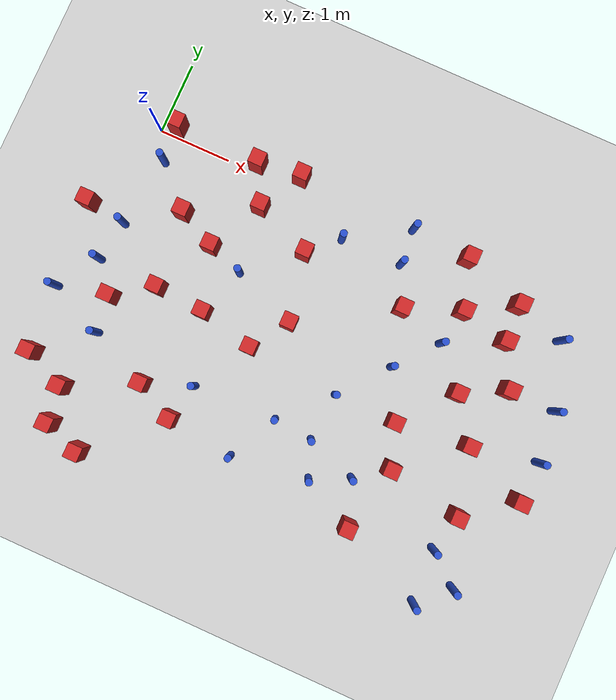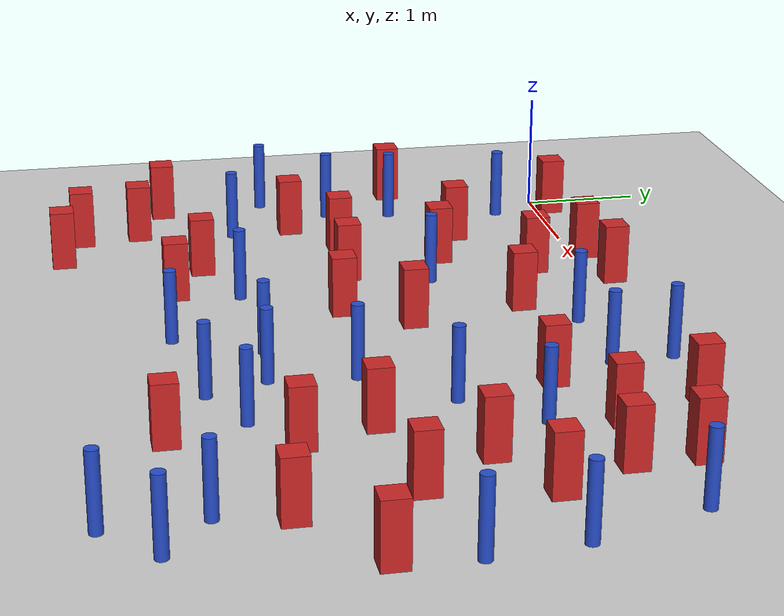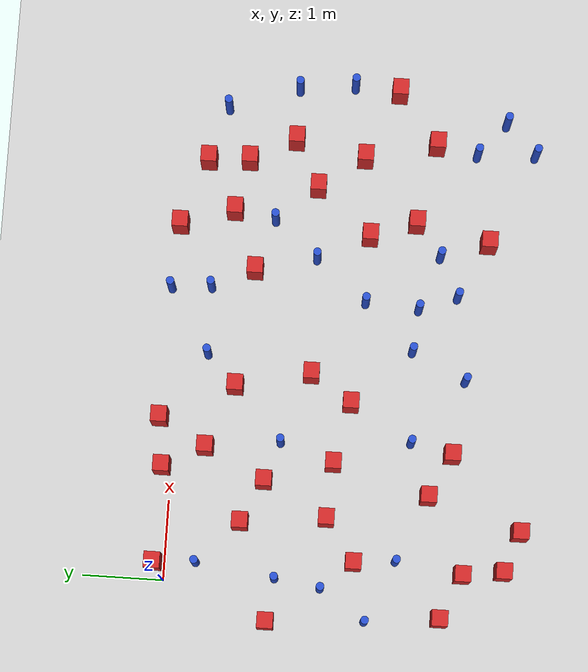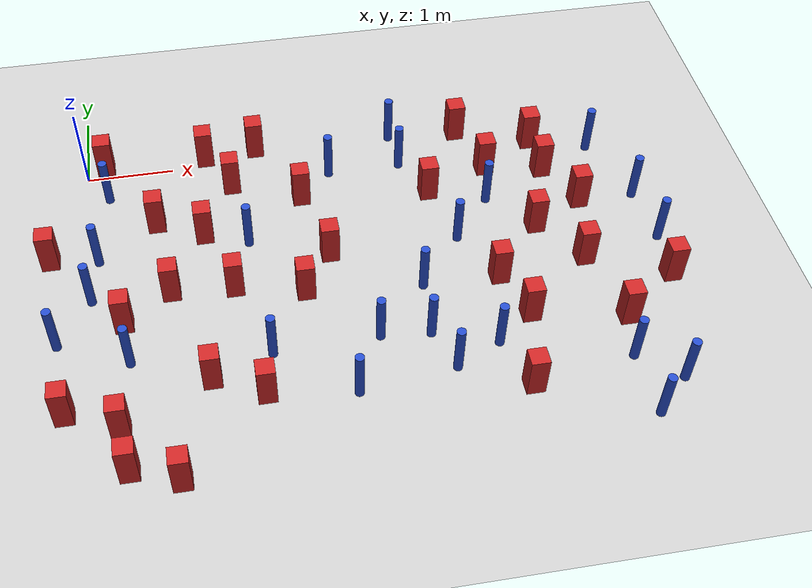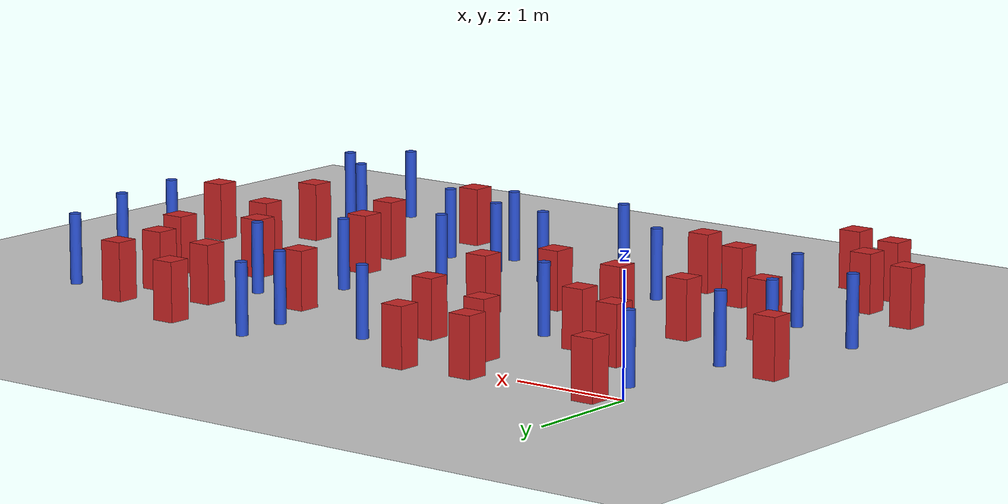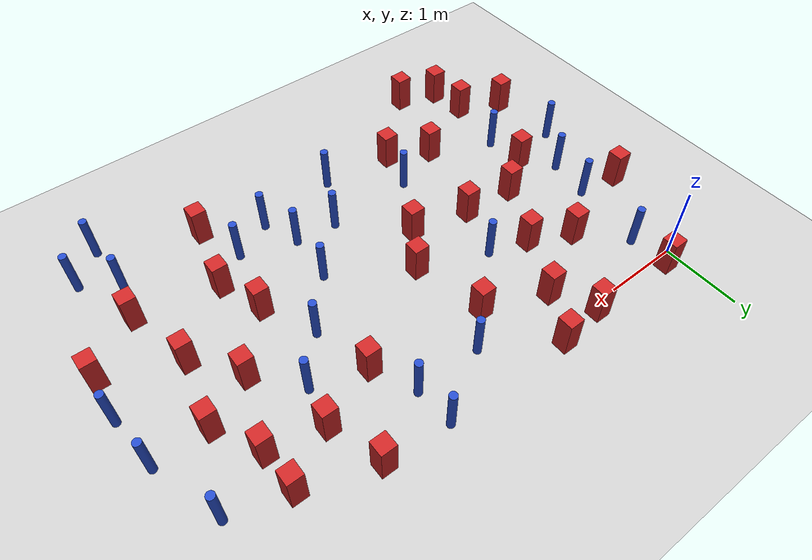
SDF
<sdf version="1.6">
 <world name="default">
  <model name="ground_plane">
   <static>1</static>
   <link name="link">
    <collision name="collision">
     <geometry><plane><normal>0 0 1</normal><size>100 100</size></plane></geometry>
     <surface><friction><ode><mu>100</mu><mu2>50</mu2></ode></friction></surface>
    </collision>
    <visual name="visual">
     <cast_shadows>0</cast_shadows>
     <geometry><plane><normal>0 0 1</normal><size>100 100</size></plane></geometry>
     <material>
      <ambient>1.0 1.0 1.0 1.0</ambient>
      <diffuse>0.8 0.8 0.8 1.0</diffuse>
      <specular>0.01 0.01 0.01 1.000000</specular>
     </material>
    </visual>
   </link>
  </model>
  <model name="NamedLocations">
   <static>true</static>
   <link name="DefaultStart"><pose>8.5 0 0 0 0 3.14</pose></link>
  </model>
  <model name="square_post_obstacle2">
   <static>true</static>
   <pose>4.48256671773 -2.31838774069 8.22691968438e-08 7.2212513382e-06 -7.54495500217e-07 2.29674213826e-05</pose>
   <link name="link">
    <pose>0 0 0.25 0 -0 0</pose>
    <inertial>
     <mass>100</mass>
     <inertia>
      <ixx>0.166667</ixx>
      <ixy>0</ixy>
      <ixz>0</ixz>
      <iyy>0.166667</iyy>
      <iyz>0</iyz>
      <izz>0.166667</izz>
     </inertia>
    </inertial>
    <collision name="collision"><geometry><box><size>.2 .2 .5</size></box></geometry></collision>
    <visual name="visual">
     <geometry><box><size>.2 .2 .5</size></box></geometry>
     <material>
      <script><name>Gazebo/Red</name><uri>file://media/materials/scripts/gazebo.material</uri></script>
     </material>
    </visual>
   </link>
  </model>
  <model name="pole_obstacle8">
   <static>true</static>
   <pose>-0.364076031964 -2.51130079487 2.88873142074e-08 -9.90536689663e-09 4.60219948993e-07 -1.20965994959e-07</pose>
   <link name="link">
    <pose>0 0 0.3 0 -0 0</pose>
    <inertial>
     <mass>1</mass>
     <inertia><ixx>0.145833</ixx><ixy>0</ixy><ixz>0</ixz><iyy>0.145833</iyy><iyz>0</iyz><izz>0.125</izz></inertia>
    </inertial>
    <collision name="collision">
     <geometry><cylinder><radius>0.05</radius><length>.6</length></cylinder></geometry>
    </collision>
    <visual name="visual">
     <geometry><cylinder><radius>0.05</radius><length>.6</length></cylinder></geometry>
     <material>
      <script><name>Gazebo/Blue</name><uri>file://media/materials/scripts/gazebo.material</uri></script>
     </material>
    </visual>
   </link>
  </model>
  <model name="square_post_obstacle15">
   <static>true</static>
   <pose>-0.277370679803 -3.42844167066 8.22691968438e-08 7.2212513382e-06 -7.54495500217e-07 2.29674213826e-05</pose>
   <link name="link">
    <pose>0 0 0.25 0 -0 0</pose>
    <inertial>
     <mass>100</mass>
     <inertia>
      <ixx>0.166667</ixx>
      <ixy>0</ixy>
      <ixz>0</ixz>
      <iyy>0.166667</iyy>
      <iyz>0</iyz>
      <izz>0.166667</izz>
     </inertia>
    </inertial>
    <collision name="collision"><geometry><box><size>.2 .2 .5</size></box></geometry></collision>
    <visual name="visual">
     <geometry><box><size>.2 .2 .5</size></box></geometry>
     <material>
      <script><name>Gazebo/Red</name><uri>file://media/materials/scripts/gazebo.material</uri></script>
     </material>
    </visual>
   </link>
  </model>
  <model name="square_post_obstacle29">
   <static>true</static>
   <pose>2.33625067397 -2.19596236131 8.22691968438e-08 7.2212513382e-06 -7.54495500217e-07 2.29674213826e-05</pose>
   <link name="link">
    <pose>0 0 0.25 0 -0 0</pose>
    <inertial>
     <mass>100</mass>
     <inertia>
      <ixx>0.166667</ixx>
      <ixy>0</ixy>
      <ixz>0</ixz>
      <iyy>0.166667</iyy>
      <iyz>0</iyz>
      <izz>0.166667</izz>
     </inertia>
    </inertial>
    <collision name="collision"><geometry><box><size>.2 .2 .5</size></box></geometry></collision>
    <visual name="visual">
     <geometry><box><size>.2 .2 .5</size></box></geometry>
     <material>
      <script><name>Gazebo/Red</name><uri>file://media/materials/scripts/gazebo.material</uri></script>
     </material>
    </visual>
   </link>
  </model>
  <model name="pole_obstacle21">
   <static>true</static>
   <pose>0.0107607865658 -1.9463137938 2.88873142074e-08 -9.90536689885e-09 4.60219948988e-07 -1.20965994962e-07</pose>
   <link name="link">
    <pose>0 0 0.3 0 -0 0</pose>
    <inertial>
     <mass>1</mass>
     <inertia><ixx>0.145833</ixx><ixy>0</ixy><ixz>0</ixz><iyy>0.145833</iyy><iyz>0</iyz><izz>0.125</izz></inertia>
    </inertial>
    <collision name="collision">
     <geometry><cylinder><radius>0.05</radius><length>.6</length></cylinder></geometry>
    </collision>
    <visual name="visual">
     <geometry><cylinder><radius>0.05</radius><length>.6</length></cylinder></geometry>
     <material>
      <script><name>Gazebo/Blue</name><uri>file://media/materials/scripts/gazebo.material</uri></script>
     </material>
    </visual>
   </link>
  </model>
  <model name="pole_obstacle25">
   <static>true</static>
   <pose>5.61476812269 -3.6230665425 2.88873142074e-08 -9.90536690245e-09 4.6021994898e-07 -1.20965994966e-07</pose>
   <link name="link">
    <pose>0 0 0.3 0 -0 0</pose>
    <inertial>
     <mass>1</mass>
     <inertia><ixx>0.145833</ixx><ixy>0</ixy><ixz>0</ixz><iyy>0.145833</iyy><iyz>0</iyz><izz>0.125</izz></inertia>
    </inertial>
    <collision name="collision">
     <geometry><cylinder><radius>0.05</radius><length>.6</length></cylinder></geometry>
    </collision>
    <visual name="visual">
     <geometry><cylinder><radius>0.05</radius><length>.6</length></cylinder></geometry>
     <material>
      <script><name>Gazebo/Blue</name><uri>file://media/materials/scripts/gazebo.material</uri></script>
     </material>
    </visual>
   </link>
  </model>
  <model name="pole_obstacle33">
   <static>true</static>
   <pose>6.04326990845 -3.97925895484 2.88873142074e-08 -9.90536690067e-09 4.60219948984e-07 -1.20965994963e-07</pose>
   <link name="link">
    <pose>0 0 0.3 0 -0 0</pose>
    <inertial>
     <mass>1</mass>
     <inertia><ixx>0.145833</ixx><ixy>0</ixy><ixz>0</ixz><iyy>0.145833</iyy><iyz>0</iyz><izz>0.125</izz></inertia>
    </inertial>
    <collision name="collision">
     <geometry><cylinder><radius>0.05</radius><length>.6</length></cylinder></geometry>
    </collision>
    <visual name="visual">
     <geometry><cylinder><radius>0.05</radius><length>.6</length></cylinder></geometry>
     <material>
      <script><name>Gazebo/Blue</name><uri>file://media/materials/scripts/gazebo.material</uri></script>
     </material>
    </visual>
   </link>
  </model>
  <model name="square_post_obstacle45">
   <static>true</static>
   <pose>1.41334979348 0.103219917894 8.22691968438e-08 7.2212513382e-06 -7.54495500217e-07 2.29674213826e-05</pose>
   <link name="link">
    <pose>0 0 0.25 0 -0 0</pose>
    <inertial>
     <mass>100</mass>
     <inertia>
      <ixx>0.166667</ixx>
      <ixy>0</ixy>
      <ixz>0</ixz>
      <iyy>0.166667</iyy>
      <iyz>0</iyz>
      <izz>0.166667</izz>
     </inertia>
    </inertial>
    <collision name="collision"><geometry><box><size>.2 .2 .5</size></box></geometry></collision>
    <visual name="visual">
     <geometry><box><size>.2 .2 .5</size></box></geometry>
     <material>
      <script><name>Gazebo/Red</name><uri>file://media/materials/scripts/gazebo.material</uri></script>
     </material>
    </visual>
   </link>
  </model>
  <model name="square_post_obstacle46">
   <static>true</static>
   <pose>6.37934067809 -2.59541258811 8.22691968438e-08 7.2212513382e-06 -7.54495500217e-07 2.29674213826e-05</pose>
   <link name="link">
    <pose>0 0 0.25 0 -0 0</pose>
    <inertial>
     <mass>100</mass>
     <inertia>
      <ixx>0.166667</ixx>
      <ixy>0</ixy>
      <ixz>0</ixz>
      <iyy>0.166667</iyy>
      <iyz>0</iyz>
      <izz>0.166667</izz>
     </inertia>
    </inertial>
    <collision name="collision"><geometry><box><size>.2 .2 .5</size></box></geometry></collision>
    <visual name="visual">
     <geometry><box><size>.2 .2 .5</size></box></geometry>
     <material>
      <script><name>Gazebo/Red</name><uri>file://media/materials/scripts/gazebo.material</uri></script>
     </material>
    </visual>
   </link>
  </model>
  <model name="square_post_obstacle48">
   <static>true</static>
   <pose>0.218462195405 0.130172918548 8.22691968438e-08 7.2212513382e-06 -7.54495500217e-07 2.29674213826e-05</pose>
   <link name="link">
    <pose>0 0 0.25 0 -0 0</pose>
    <inertial>
     <mass>100</mass>
     <inertia>
      <ixx>0.166667</ixx>
      <ixy>0</ixy>
      <ixz>0</ixz>
      <iyy>0.166667</iyy>
      <iyz>0</iyz>
      <izz>0.166667</izz>
     </inertia>
    </inertial>
    <collision name="collision"><geometry><box><size>.2 .2 .5</size></box></geometry></collision>
    <visual name="visual">
     <geometry><box><size>.2 .2 .5</size></box></geometry>
     <material>
      <script><name>Gazebo/Red</name><uri>file://media/materials/scripts/gazebo.material</uri></script>
     </material>
    </visual>
   </link>
  </model>
  <model name="pole_obstacle48">
   <static>true</static>
   <pose>3.7573932675 -3.46284838653 2.88873142074e-08 -9.90536690232e-09 4.6021994898e-07 -1.20965994968e-07</pose>
   <link name="link">
    <pose>0 0 0.3 0 -0 0</pose>
    <inertial>
     <mass>1</mass>
     <inertia><ixx>0.145833</ixx><ixy>0</ixy><ixz>0</ixz><iyy>0.145833</iyy><iyz>0</iyz><izz>0.125</izz></inertia>
    </inertial>
    <collision name="collision">
     <geometry><cylinder><radius>0.05</radius><length>.6</length></cylinder></geometry>
    </collision>
    <visual name="visual">
     <geometry><cylinder><radius>0.05</radius><length>.6</length></cylinder></geometry>
     <material>
      <script><name>Gazebo/Blue</name><uri>file://media/materials/scripts/gazebo.material</uri></script>
     </material>
    </visual>
   </link>
  </model>
  <model name="pole_obstacle49">
   <static>true</static>
   <pose>2.69447848397 -3.61214260773 2.88873142074e-08 -9.90536690232e-09 4.6021994898e-07 -1.20965994968e-07</pose>
   <link name="link">
    <pose>0 0 0.3 0 -0 0</pose>
    <inertial>
     <mass>1</mass>
     <inertia><ixx>0.145833</ixx><ixy>0</ixy><ixz>0</ixz><iyy>0.145833</iyy><iyz>0</iyz><izz>0.125</izz></inertia>
    </inertial>
    <collision name="collision">
     <geometry><cylinder><radius>0.05</radius><length>.6</length></cylinder></geometry>
    </collision>
    <visual name="visual">
     <geometry><cylinder><radius>0.05</radius><length>.6</length></cylinder></geometry>
     <material>
      <script><name>Gazebo/Blue</name><uri>file://media/materials/scripts/gazebo.material</uri></script>
     </material>
    </visual>
   </link>
  </model>
  <model name="pole_obstacle50">
   <static>true</static>
   <pose>3.68099340897 0.142534082404 2.88873142074e-08 -9.90536689314e-09 4.60219949002e-07 -1.20965994953e-07</pose>
   <link name="link">
    <pose>0 0 0.3 0 -0 0</pose>
    <inertial>
     <mass>1</mass>
     <inertia><ixx>0.145833</ixx><ixy>0</ixy><ixz>0</ixz><iyy>0.145833</iyy><iyz>0</iyz><izz>0.125</izz></inertia>
    </inertial>
    <collision name="collision">
     <geometry><cylinder><radius>0.05</radius><length>.6</length></cylinder></geometry>
    </collision>
    <visual name="visual">
     <geometry><cylinder><radius>0.05</radius><length>.6</length></cylinder></geometry>
     <material>
      <script><name>Gazebo/Blue</name><uri>file://media/materials/scripts/gazebo.material</uri></script>
     </material>
    </visual>
   </link>
  </model>
  <model name="pole_obstacle51">
   <static>true</static>
   <pose>1.88008636865 -2.97251965097 2.88873142074e-08 -9.90536689791e-09 4.6021994899e-07 -1.20965994959e-07</pose>
   <link name="link">
    <pose>0 0 0.3 0 -0 0</pose>
    <inertial>
     <mass>1</mass>
     <inertia><ixx>0.145833</ixx><ixy>0</ixy><ixz>0</ixz><iyy>0.145833</iyy><iyz>0</iyz><izz>0.125</izz></inertia>
    </inertial>
    <collision name="collision">
     <geometry><cylinder><radius>0.05</radius><length>.6</length></cylinder></geometry>
    </collision>
    <visual name="visual">
     <geometry><cylinder><radius>0.05</radius><length>.6</length></cylinder></geometry>
     <material>
      <script><name>Gazebo/Blue</name><uri>file://media/materials/scripts/gazebo.material</uri></script>
     </material>
    </visual>
   </link>
  </model>
  <model name="square_post_obstacle57">
   <static>true</static>
   <pose>5.38714447974 -0.7398988865 8.22691968438e-08 7.2212513382e-06 -7.54495500217e-07 2.29674213826e-05</pose>
   <link name="link">
    <pose>0 0 0.25 0 -0 0</pose>
    <inertial>
     <mass>100</mass>
     <inertia>
      <ixx>0.166667</ixx>
      <ixy>0</ixy>
      <ixz>0</ixz>
      <iyy>0.166667</iyy>
      <iyz>0</iyz>
      <izz>0.166667</izz>
     </inertia>
    </inertial>
    <collision name="collision"><geometry><box><size>.2 .2 .5</size></box></geometry></collision>
    <visual name="visual">
     <geometry><box><size>.2 .2 .5</size></box></geometry>
     <material>
      <script><name>Gazebo/Red</name><uri>file://media/materials/scripts/gazebo.material</uri></script>
     </material>
    </visual>
   </link>
  </model>
  <model name="pole_obstacle63">
   <static>true</static>
   <pose>4.26575744871 -3.21891572533 2.88873142074e-08 -9.90536690245e-09 4.6021994898e-07 -1.20965994966e-07</pose>
   <link name="link">
    <pose>0 0 0.3 0 -0 0</pose>
    <inertial>
     <mass>1</mass>
     <inertia><ixx>0.145833</ixx><ixy>0</ixy><ixz>0</ixz><iyy>0.145833</iyy><iyz>0</iyz><izz>0.125</izz></inertia>
    </inertial>
    <collision name="collision">
     <geometry><cylinder><radius>0.05</radius><length>.6</length></cylinder></geometry>
    </collision>
    <visual name="visual">
     <geometry><cylinder><radius>0.05</radius><length>.6</length></cylinder></geometry>
     <material>
      <script><name>Gazebo/Blue</name><uri>file://media/materials/scripts/gazebo.material</uri></script>
     </material>
    </visual>
   </link>
  </model>
  <model name="square_post_obstacle66">
   <static>true</static>
   <pose>1.30578321288 -1.17248248201 8.22691968438e-08 7.2212513382e-06 -7.54495500217e-07 2.29674213826e-05</pose>
   <link name="link">
    <pose>0 0 0.25 0 -0 0</pose>
    <inertial>
     <mass>100</mass>
     <inertia>
      <ixx>0.166667</ixx>
      <ixy>0</ixy>
      <ixz>0</ixz>
      <iyy>0.166667</iyy>
      <iyz>0</iyz>
      <izz>0.166667</izz>
     </inertia>
    </inertial>
    <collision name="collision"><geometry><box><size>.2 .2 .5</size></box></geometry></collision>
    <visual name="visual">
     <geometry><box><size>.2 .2 .5</size></box></geometry>
     <material>
      <script><name>Gazebo/Red</name><uri>file://media/materials/scripts/gazebo.material</uri></script>
     </material>
    </visual>
   </link>
  </model>
  <model name="square_post_obstacle72">
   <static>true</static>
   <pose>1.57362172727 -2.01986518862 8.22691968438e-08 7.2212513382e-06 -7.54495500217e-07 2.29674213826e-05</pose>
   <link name="link">
    <pose>0 0 0.25 0 -0 0</pose>
    <inertial>
     <mass>100</mass>
     <inertia>
      <ixx>0.166667</ixx>
      <ixy>0</ixy>
      <ixz>0</ixz>
      <iyy>0.166667</iyy>
      <iyz>0</iyz>
      <izz>0.166667</izz>
     </inertia>
    </inertial>
    <collision name="collision"><geometry><box><size>.2 .2 .5</size></box></geometry></collision>
    <visual name="visual">
     <geometry><box><size>.2 .2 .5</size></box></geometry>
     <material>
      <script><name>Gazebo/Red</name><uri>file://media/materials/scripts/gazebo.material</uri></script>
     </material>
    </visual>
   </link>
  </model>
  <model name="square_post_obstacle89">
   <static>true</static>
   <pose>5.49666820926 -2.20263131603 8.22691968438e-08 7.2212513382e-06 -7.54495500217e-07 2.29674213826e-05</pose>
   <link name="link">
    <pose>0 0 0.25 0 -0 0</pose>
    <inertial>
     <mass>100</mass>
     <inertia>
      <ixx>0.166667</ixx>
      <ixy>0</ixy>
      <ixz>0</ixz>
      <iyy>0.166667</iyy>
      <iyz>0</iyz>
      <izz>0.166667</izz>
     </inertia>
    </inertial>
    <collision name="collision"><geometry><box><size>.2 .2 .5</size></box></geometry></collision>
    <visual name="visual">
     <geometry><box><size>.2 .2 .5</size></box></geometry>
     <material>
      <script><name>Gazebo/Red</name><uri>file://media/materials/scripts/gazebo.material</uri></script>
     </material>
    </visual>
   </link>
  </model>
  <model name="square_post_obstacle90">
   <static>true</static>
   <pose>4.68475058015 -2.89849199616 8.22691968438e-08 7.2212513382e-06 -7.54495500217e-07 2.29674213826e-05</pose>
   <link name="link">
    <pose>0 0 0.25 0 -0 0</pose>
    <inertial>
     <mass>100</mass>
     <inertia>
      <ixx>0.166667</ixx>
      <ixy>0</ixy>
      <ixz>0</ixz>
      <iyy>0.166667</iyy>
      <iyz>0</iyz>
      <izz>0.166667</izz>
     </inertia>
    </inertial>
    <collision name="collision"><geometry><box><size>.2 .2 .5</size></box></geometry></collision>
    <visual name="visual">
     <geometry><box><size>.2 .2 .5</size></box></geometry>
     <material>
      <script><name>Gazebo/Red</name><uri>file://media/materials/scripts/gazebo.material</uri></script>
     </material>
    </visual>
   </link>
  </model>
  <model name="square_post_obstacle97">
   <static>true</static>
   <pose>5.07850528544 -1.62864170728 8.22691968438e-08 7.2212513382e-06 -7.54495500217e-07 2.29674213826e-05</pose>
   <link name="link">
    <pose>0 0 0.25 0 -0 0</pose>
    <inertial>
     <mass>100</mass>
     <inertia>
      <ixx>0.166667</ixx>
      <ixy>0</ixy>
      <ixz>0</ixz>
      <iyy>0.166667</iyy>
      <iyz>0</iyz>
      <izz>0.166667</izz>
     </inertia>
    </inertial>
    <collision name="collision"><geometry><box><size>.2 .2 .5</size></box></geometry></collision>
    <visual name="visual">
     <geometry><box><size>.2 .2 .5</size></box></geometry>
     <material>
      <script><name>Gazebo/Red</name><uri>file://media/materials/scripts/gazebo.material</uri></script>
     </material>
    </visual>
   </link>
  </model>
  <model name="pole_obstacle115">
   <static>true</static>
   <pose>6.35290320452 -1.31811618138 2.88873142074e-08 -9.90536689445e-09 4.60219948999e-07 -1.20965994956e-07</pose>
   <link name="link">
    <pose>0 0 0.3 0 -0 0</pose>
    <inertial>
     <mass>1</mass>
     <inertia><ixx>0.145833</ixx><ixy>0</ixy><ixz>0</ixz><iyy>0.145833</iyy><iyz>0</iyz><izz>0.125</izz></inertia>
    </inertial>
    <collision name="collision">
     <geometry><cylinder><radius>0.05</radius><length>.6</length></cylinder></geometry>
    </collision>
    <visual name="visual">
     <geometry><cylinder><radius>0.05</radius><length>.6</length></cylinder></geometry>
     <material>
      <script><name>Gazebo/Blue</name><uri>file://media/materials/scripts/gazebo.material</uri></script>
     </material>
    </visual>
   </link>
  </model>
  <model name="pole_obstacle118">
   <static>true</static>
   <pose>3.03494272129 -2.93056007065 2.88873142074e-08 -9.90536690232e-09 4.6021994898e-07 -1.20965994968e-07</pose>
   <link name="link">
    <pose>0 0 0.3 0 -0 0</pose>
    <inertial>
     <mass>1</mass>
     <inertia><ixx>0.145833</ixx><ixy>0</ixy><ixz>0</ixz><iyy>0.145833</iyy><iyz>0</iyz><izz>0.125</izz></inertia>
    </inertial>
    <collision name="collision">
     <geometry><cylinder><radius>0.05</radius><length>.6</length></cylinder></geometry>
    </collision>
    <visual name="visual">
     <geometry><cylinder><radius>0.05</radius><length>.6</length></cylinder></geometry>
     <material>
      <script><name>Gazebo/Blue</name><uri>file://media/materials/scripts/gazebo.material</uri></script>
     </material>
    </visual>
   </link>
  </model>
  <model name="square_post_obstacle107">
   <static>true</static>
   <pose>0.775431608934 -0.91039208798 8.22691968438e-08 7.22125133819e-06 -7.54495500217e-07 2.29674213826e-05</pose>
   <link name="link">
    <pose>0 0 0.25 0 -0 0</pose>
    <inertial>
     <mass>100</mass>
     <inertia>
      <ixx>0.166667</ixx>
      <ixy>0</ixy>
      <ixz>0</ixz>
      <iyy>0.166667</iyy>
      <iyz>0</iyz>
      <izz>0.166667</izz>
     </inertia>
    </inertial>
    <collision name="collision"><geometry><box><size>.2 .2 .5</size></box></geometry></collision>
    <visual name="visual">
     <geometry><box><size>.2 .2 .5</size></box></geometry>
     <material>
      <script><name>Gazebo/Red</name><uri>file://media/materials/scripts/gazebo.material</uri></script>
     </material>
    </visual>
   </link>
  </model>
  <model name="pole_obstacle124">
   <static>true</static>
   <pose>0.243098920283 -0.389256481468 2.88873142074e-08 -9.90536689982e-09 4.60219948986e-07 -1.20965994962e-07</pose>
   <link name="link">
    <pose>0 0 0.3 0 -0 0</pose>
    <inertial>
     <mass>1</mass>
     <inertia><ixx>0.145833</ixx><ixy>0</ixy><ixz>0</ixz><iyy>0.145833</iyy><iyz>0</iyz><izz>0.125</izz></inertia>
    </inertial>
    <collision name="collision">
     <geometry><cylinder><radius>0.05</radius><length>.6</length></cylinder></geometry>
    </collision>
    <visual name="visual">
     <geometry><cylinder><radius>0.05</radius><length>.6</length></cylinder></geometry>
     <material>
      <script><name>Gazebo/Blue</name><uri>file://media/materials/scripts/gazebo.material</uri></script>
     </material>
    </visual>
   </link>
  </model>
  <model name="pole_obstacle127">
   <static>true</static>
   <pose>3.57678413798 -2.98056228149 2.88873142074e-08 -9.90536690232e-09 4.6021994898e-07 -1.20965994968e-07</pose>
   <link name="link">
    <pose>0 0 0.3 0 -0 0</pose>
    <inertial>
     <mass>1</mass>
     <inertia><ixx>0.145833</ixx><ixy>0</ixy><ixz>0</ixz><iyy>0.145833</iyy><iyz>0</iyz><izz>0.125</izz></inertia>
    </inertial>
    <collision name="collision">
     <geometry><cylinder><radius>0.05</radius><length>.6</length></cylinder></geometry>
    </collision>
    <visual name="visual">
     <geometry><cylinder><radius>0.05</radius><length>.6</length></cylinder></geometry>
     <material>
      <script><name>Gazebo/Blue</name><uri>file://media/materials/scripts/gazebo.material</uri></script>
     </material>
    </visual>
   </link>
  </model>
  <model name="square_post_obstacle113">
   <static>true</static>
   <pose>2.67826442993 -1.68225320262 8.22691968438e-08 7.2212513382e-06 -7.54495500217e-07 2.29674213826e-05</pose>
   <link name="link">
    <pose>0 0 0.25 0 -0 0</pose>
    <inertial>
     <mass>100</mass>
     <inertia>
      <ixx>0.166667</ixx>
      <ixy>0</ixy>
      <ixz>0</ixz>
      <iyy>0.166667</iyy>
      <iyz>0</iyz>
      <izz>0.166667</izz>
     </inertia>
    </inertial>
    <collision name="collision"><geometry><box><size>.2 .2 .5</size></box></geometry></collision>
    <visual name="visual">
     <geometry><box><size>.2 .2 .5</size></box></geometry>
     <material>
      <script><name>Gazebo/Red</name><uri>file://media/materials/scripts/gazebo.material</uri></script>
     </material>
    </visual>
   </link>
  </model>
  <model name="pole_obstacle136">
   <static>true</static>
   <pose>6.42782485548 -2.02409768433 2.88873142074e-08 -9.90536689749e-09 4.60219948991e-07 -1.20965994959e-07</pose>
   <link name="link">
    <pose>0 0 0.3 0 -0 0</pose>
    <inertial>
     <mass>1</mass>
     <inertia><ixx>0.145833</ixx><ixy>0</ixy><ixz>0</ixz><iyy>0.145833</iyy><iyz>0</iyz><izz>0.125</izz></inertia>
    </inertial>
    <collision name="collision">
     <geometry><cylinder><radius>0.05</radius><length>.6</length></cylinder></geometry>
    </collision>
    <visual name="visual">
     <geometry><cylinder><radius>0.05</radius><length>.6</length></cylinder></geometry>
     <material>
      <script><name>Gazebo/Blue</name><uri>file://media/materials/scripts/gazebo.material</uri></script>
     </material>
    </visual>
   </link>
  </model>
  <model name="square_post_obstacle121">
   <static>true</static>
   <pose>-0.43152999291 -1.29964099208 8.22691968438e-08 7.2212513382e-06 -7.54495500217e-07 2.29674213826e-05</pose>
   <link name="link">
    <pose>0 0 0.25 0 -0 0</pose>
    <inertial>
     <mass>100</mass>
     <inertia>
      <ixx>0.166667</ixx>
      <ixy>0</ixy>
      <ixz>0</ixz>
      <iyy>0.166667</iyy>
      <iyz>0</iyz>
      <izz>0.166667</izz>
     </inertia>
    </inertial>
    <collision name="collision"><geometry><box><size>.2 .2 .5</size></box></geometry></collision>
    <visual name="visual">
     <geometry><box><size>.2 .2 .5</size></box></geometry>
     <material>
      <script><name>Gazebo/Red</name><uri>file://media/materials/scripts/gazebo.material</uri></script>
     </material>
    </visual>
   </link>
  </model>
  <model name="pole_obstacle141">
   <static>true</static>
   <pose>4.15556878637 -1.66498911561 2.88873142074e-08 -9.90536689445e-09 4.60219948999e-07 -1.20965994956e-07</pose>
   <link name="link">
    <pose>0 0 0.3 0 -0 0</pose>
    <inertial>
     <mass>1</mass>
     <inertia><ixx>0.145833</ixx><ixy>0</ixy><ixz>0</ixz><iyy>0.145833</iyy><iyz>0</iyz><izz>0.125</izz></inertia>
    </inertial>
    <collision name="collision">
     <geometry><cylinder><radius>0.05</radius><length>.6</length></cylinder></geometry>
    </collision>
    <visual name="visual">
     <geometry><cylinder><radius>0.05</radius><length>.6</length></cylinder></geometry>
     <material>
      <script><name>Gazebo/Blue</name><uri>file://media/materials/scripts/gazebo.material</uri></script>
     </material>
    </visual>
   </link>
  </model>
  <model name="pole_obstacle144">
   <static>true</static>
   <pose>3.71615471972 -0.35876670175 2.88873142074e-08 -9.90536689307e-09 4.60219949002e-07 -1.20965994954e-07</pose>
   <link name="link">
    <pose>0 0 0.3 0 -0 0</pose>
    <inertial>
     <mass>1</mass>
     <inertia><ixx>0.145833</ixx><ixy>0</ixy><ixz>0</ixz><iyy>0.145833</iyy><iyz>0</iyz><izz>0.125</izz></inertia>
    </inertial>
    <collision name="collision">
     <geometry><cylinder><radius>0.05</radius><length>.6</length></cylinder></geometry>
    </collision>
    <visual name="visual">
     <geometry><cylinder><radius>0.05</radius><length>.6</length></cylinder></geometry>
     <material>
      <script><name>Gazebo/Blue</name><uri>file://media/materials/scripts/gazebo.material</uri></script>
     </material>
    </visual>
   </link>
  </model>
  <model name="pole_obstacle145">
   <static>true</static>
   <pose>6.05438125255 -0.430873144843 2.88873142074e-08 -9.90536689981e-09 4.60219948986e-07 -1.20965994962e-07</pose>
   <link name="link">
    <pose>0 0 0.3 0 -0 0</pose>
    <inertial>
     <mass>1</mass>
     <inertia><ixx>0.145833</ixx><ixy>0</ixy><ixz>0</ixz><iyy>0.145833</iyy><iyz>0</iyz><izz>0.125</izz></inertia>
    </inertial>
    <collision name="collision">
     <geometry><cylinder><radius>0.05</radius><length>.6</length></cylinder></geometry>
    </collision>
    <visual name="visual">
     <geometry><cylinder><radius>0.05</radius><length>.6</length></cylinder></geometry>
     <material>
      <script><name>Gazebo/Blue</name><uri>file://media/materials/scripts/gazebo.material</uri></script>
     </material>
    </visual>
   </link>
  </model>
  <model name="square_post_obstacle136">
   <static>true</static>
   <pose>1.68652116118 -0.417912485185 8.22691968438e-08 7.2212513382e-06 -7.54495500217e-07 2.29674213826e-05</pose>
   <link name="link">
    <pose>0 0 0.25 0 -0 0</pose>
    <inertial>
     <mass>100</mass>
     <inertia>
      <ixx>0.166667</ixx>
      <ixy>0</ixy>
      <ixz>0</ixz>
      <iyy>0.166667</iyy>
      <iyz>0</iyz>
      <izz>0.166667</izz>
     </inertia>
    </inertial>
    <collision name="collision"><geometry><box><size>.2 .2 .5</size></box></geometry></collision>
    <visual name="visual">
     <geometry><box><size>.2 .2 .5</size></box></geometry>
     <material>
      <script><name>Gazebo/Red</name><uri>file://media/materials/scripts/gazebo.material</uri></script>
     </material>
    </visual>
   </link>
  </model>
  <model name="square_post_obstacle141">
   <static>true</static>
   <pose>0.279209833764 -3.68343171948 8.22691968438e-08 7.22125133819e-06 -7.54495500217e-07 2.29674213826e-05</pose>
   <link name="link">
    <pose>0 0 0.25 0 -0 0</pose>
    <inertial>
     <mass>100</mass>
     <inertia>
      <ixx>0.166667</ixx>
      <ixy>0</ixy>
      <ixz>0</ixz>
      <iyy>0.166667</iyy>
      <iyz>0</iyz>
      <izz>0.166667</izz>
     </inertia>
    </inertial>
    <collision name="collision"><geometry><box><size>.2 .2 .5</size></box></geometry></collision>
    <visual name="visual">
     <geometry><box><size>.2 .2 .5</size></box></geometry>
     <material>
      <script><name>Gazebo/Red</name><uri>file://media/materials/scripts/gazebo.material</uri></script>
     </material>
    </visual>
   </link>
  </model>
  <model name="square_post_obstacle145">
   <static>true</static>
   <pose>0.844350015091 -4.37289674065 8.22691968438e-08 7.22125133819e-06 -7.54495500217e-07 2.29674213826e-05</pose>
   <link name="link">
    <pose>0 0 0.25 0 -0 0</pose>
    <inertial>
     <mass>100</mass>
     <inertia>
      <ixx>0.166667</ixx>
      <ixy>0</ixy>
      <ixz>0</ixz>
      <iyy>0.166667</iyy>
      <iyz>0</iyz>
      <izz>0.166667</izz>
     </inertia>
    </inertial>
    <collision name="collision"><geometry><box><size>.2 .2 .5</size></box></geometry></collision>
    <visual name="visual">
     <geometry><box><size>.2 .2 .5</size></box></geometry>
     <material>
      <script><name>Gazebo/Red</name><uri>file://media/materials/scripts/gazebo.material</uri></script>
     </material>
    </visual>
   </link>
  </model>
  <model name="square_post_obstacle148">
   <static>true</static>
   <pose>2.02430912068 0.173733210992 8.22691968438e-08 7.2212513382e-06 -7.54495500217e-07 2.29674213826e-05</pose>
   <link name="link">
    <pose>0 0 0.25 0 -0 0</pose>
    <inertial>
     <mass>100</mass>
     <inertia>
      <ixx>0.166667</ixx>
      <ixy>0</ixy>
      <ixz>0</ixz>
      <iyy>0.166667</iyy>
      <iyz>0</iyz>
      <izz>0.166667</izz>
     </inertia>
    </inertial>
    <collision name="collision"><geometry><box><size>.2 .2 .5</size></box></geometry></collision>
    <visual name="visual">
     <geometry><box><size>.2 .2 .5</size></box></geometry>
     <material>
      <script><name>Gazebo/Red</name><uri>file://media/materials/scripts/gazebo.material</uri></script>
     </material>
    </visual>
   </link>
  </model>
  <model name="square_post_obstacle149">
   <static>true</static>
   <pose>1.2261760169 -3.22014730043 8.22691968438e-08 7.2212513382e-06 -7.54495500217e-07 2.29674213826e-05</pose>
   <link name="link">
    <pose>0 0 0.25 0 -0 0</pose>
    <inertial>
     <mass>100</mass>
     <inertia>
      <ixx>0.166667</ixx>
      <ixy>0</ixy>
      <ixz>0</ixz>
      <iyy>0.166667</iyy>
      <iyz>0</iyz>
      <izz>0.166667</izz>
     </inertia>
    </inertial>
    <collision name="collision"><geometry><box><size>.2 .2 .5</size></box></geometry></collision>
    <visual name="visual">
     <geometry><box><size>.2 .2 .5</size></box></geometry>
     <material>
      <script><name>Gazebo/Red</name><uri>file://media/materials/scripts/gazebo.material</uri></script>
     </material>
    </visual>
   </link>
  </model>
  <model name="pole_obstacle158">
   <static>true</static>
   <pose>4.62315359669 -1.11203984856 2.88873142074e-08 -9.90536689445e-09 4.60219948999e-07 -1.20965994956e-07</pose>
   <link name="link">
    <pose>0 0 0.3 0 -0 0</pose>
    <inertial>
     <mass>1</mass>
     <inertia><ixx>0.145833</ixx><ixy>0</ixy><ixz>0</ixz><iyy>0.145833</iyy><iyz>0</iyz><izz>0.125</izz></inertia>
    </inertial>
    <collision name="collision">
     <geometry><cylinder><radius>0.05</radius><length>.6</length></cylinder></geometry>
    </collision>
    <visual name="visual">
     <geometry><cylinder><radius>0.05</radius><length>.6</length></cylinder></geometry>
     <material>
      <script><name>Gazebo/Blue</name><uri>file://media/materials/scripts/gazebo.material</uri></script>
     </material>
    </visual>
   </link>
  </model>
  <model name="square_post_obstacle152">
   <static>true</static>
   <pose>0.88075053101 -1.97303056883 8.22691968438e-08 7.2212513382e-06 -7.54495500217e-07 2.29674213826e-05</pose>
   <link name="link">
    <pose>0 0 0.25 0 -0 0</pose>
    <inertial>
     <mass>100</mass>
     <inertia>
      <ixx>0.166667</ixx>
      <ixy>0</ixy>
      <ixz>0</ixz>
      <iyy>0.166667</iyy>
      <iyz>0</iyz>
      <izz>0.166667</izz>
     </inertia>
    </inertial>
    <collision name="collision"><geometry><box><size>.2 .2 .5</size></box></geometry></collision>
    <visual name="visual">
     <geometry><box><size>.2 .2 .5</size></box></geometry>
     <material>
      <script><name>Gazebo/Red</name><uri>file://media/materials/scripts/gazebo.material</uri></script>
     </material>
    </visual>
   </link>
  </model>
  <model name="square_post_obstacle158">
   <static>true</static>
   <pose>5.71588561896 -3.10525028999 8.22691968438e-08 7.2212513382e-06 -7.54495500217e-07 2.29674213826e-05</pose>
   <link name="link">
    <pose>0 0 0.25 0 -0 0</pose>
    <inertial>
     <mass>100</mass>
     <inertia>
      <ixx>0.166667</ixx>
      <ixy>0</ixy>
      <ixz>0</ixz>
      <iyy>0.166667</iyy>
      <iyz>0</iyz>
      <izz>0.166667</izz>
     </inertia>
    </inertial>
    <collision name="collision"><geometry><box><size>.2 .2 .5</size></box></geometry></collision>
    <visual name="visual">
     <geometry><box><size>.2 .2 .5</size></box></geometry>
     <material>
      <script><name>Gazebo/Red</name><uri>file://media/materials/scripts/gazebo.material</uri></script>
     </material>
    </visual>
   </link>
  </model>
  <model name="square_post_obstacle161">
   <static>true</static>
   <pose>5.36143452934 -0.221169874388 8.22691968438e-08 7.2212513382e-06 -7.54495500217e-07 2.29674213826e-05</pose>
   <link name="link">
    <pose>0 0 0.25 0 -0 0</pose>
    <inertial>
     <mass>100</mass>
     <inertia>
      <ixx>0.166667</ixx>
      <ixy>0</ixy>
      <ixz>0</ixz>
      <iyy>0.166667</iyy>
      <iyz>0</iyz>
      <izz>0.166667</izz>
     </inertia>
    </inertial>
    <collision name="collision"><geometry><box><size>.2 .2 .5</size></box></geometry></collision>
    <visual name="visual">
     <geometry><box><size>.2 .2 .5</size></box></geometry>
     <material>
      <script><name>Gazebo/Red</name><uri>file://media/materials/scripts/gazebo.material</uri></script>
     </material>
    </visual>
   </link>
  </model>
  <model name="square_post_obstacle164">
   <static>true</static>
   <pose>4.50314122307 0.0824091465995 8.22691968438e-08 7.2212513382e-06 -7.54495500217e-07 2.29674213826e-05</pose>
   <link name="link">
    <pose>0 0 0.25 0 -0 0</pose>
    <inertial>
     <mass>100</mass>
     <inertia>
      <ixx>0.166667</ixx>
      <ixy>0</ixy>
      <ixz>0</ixz>
      <iyy>0.166667</iyy>
      <iyz>0</iyz>
      <izz>0.166667</izz>
     </inertia>
    </inertial>
    <collision name="collision"><geometry><box><size>.2 .2 .5</size></box></geometry></collision>
    <visual name="visual">
     <geometry><box><size>.2 .2 .5</size></box></geometry>
     <material>
      <script><name>Gazebo/Red</name><uri>file://media/materials/scripts/gazebo.material</uri></script>
     </material>
    </visual>
   </link>
  </model>
  <model name="square_post_obstacle166">
   <static>true</static>
   <pose>3.96744492593 -0.894966709876 8.22691968438e-08 7.2212513382e-06 -7.54495500217e-07 2.29674213826e-05</pose>
   <link name="link">
    <pose>0 0 0.25 0 -0 0</pose>
    <inertial>
     <mass>100</mass>
     <inertia>
      <ixx>0.166667</ixx>
      <ixy>0</ixy>
      <ixz>0</ixz>
      <iyy>0.166667</iyy>
      <iyz>0</iyz>
      <izz>0.166667</izz>
     </inertia>
    </inertial>
    <collision name="collision"><geometry><box><size>.2 .2 .5</size></box></geometry></collision>
    <visual name="visual">
     <geometry><box><size>.2 .2 .5</size></box></geometry>
     <material>
      <script><name>Gazebo/Red</name><uri>file://media/materials/scripts/gazebo.material</uri></script>
     </material>
    </visual>
   </link>
  </model>
  <model name="square_post_obstacle168">
   <static>true</static>
   <pose>4.47345745524 -3.81770902476 8.22691968438e-08 7.2212513382e-06 -7.54495500217e-07 2.29674213826e-05</pose>
   <link name="link">
    <pose>0 0 0.25 0 -0 0</pose>
    <inertial>
     <mass>100</mass>
     <inertia>
      <ixx>0.166667</ixx>
      <ixy>0</ixy>
      <ixz>0</ixz>
      <iyy>0.166667</iyy>
      <iyz>0</iyz>
      <izz>0.166667</izz>
     </inertia>
    </inertial>
    <collision name="collision"><geometry><box><size>.2 .2 .5</size></box></geometry></collision>
    <visual name="visual">
     <geometry><box><size>.2 .2 .5</size></box></geometry>
     <material>
      <script><name>Gazebo/Red</name><uri>file://media/materials/scripts/gazebo.material</uri></script>
     </material>
    </visual>
   </link>
  </model>
  <model name="square_post_obstacle172">
   <static>true</static>
   <pose>4.72015497427 -0.594179449403 8.22691968438e-08 7.2212513382e-06 -7.54495500217e-07 2.29674213826e-05</pose>
   <link name="link">
    <pose>0 0 0.25 0 -0 0</pose>
    <inertial>
     <mass>100</mass>
     <inertia>
      <ixx>0.166667</ixx>
      <ixy>0</ixy>
      <ixz>0</ixz>
      <iyy>0.166667</iyy>
      <iyz>0</iyz>
      <izz>0.166667</izz>
     </inertia>
    </inertial>
    <collision name="collision"><geometry><box><size>.2 .2 .5</size></box></geometry></collision>
    <visual name="visual">
     <geometry><box><size>.2 .2 .5</size></box></geometry>
     <material>
      <script><name>Gazebo/Red</name><uri>file://media/materials/scripts/gazebo.material</uri></script>
     </material>
    </visual>
   </link>
  </model>
  <model name="square_post_obstacle173">
   <static>true</static>
   <pose>1.76138588818 -3.49033050574 8.22691968438e-08 7.2212513382e-06 -7.54495500217e-07 2.29674213826e-05</pose>
   <link name="link">
    <pose>0 0 0.25 0 -0 0</pose>
    <inertial>
     <mass>100</mass>
     <inertia>
      <ixx>0.166667</ixx>
      <ixy>0</ixy>
      <ixz>0</ixz>
      <iyy>0.166667</iyy>
      <iyz>0</iyz>
      <izz>0.166667</izz>
     </inertia>
    </inertial>
    <collision name="collision"><geometry><box><size>.2 .2 .5</size></box></geometry></collision>
    <visual name="visual">
     <geometry><box><size>.2 .2 .5</size></box></geometry>
     <material>
      <script><name>Gazebo/Red</name><uri>file://media/materials/scripts/gazebo.material</uri></script>
     </material>
    </visual>
   </link>
  </model>
  <model name="square_post_obstacle175">
   <static>true</static>
   <pose>2.47607517403 -0.741083312117 8.22691968438e-08 7.2212513382e-06 -7.54495500217e-07 2.29674213826e-05</pose>
   <link name="link">
    <pose>0 0 0.25 0 -0 0</pose>
    <inertial>
     <mass>100</mass>
     <inertia>
      <ixx>0.166667</ixx>
      <ixy>0</ixy>
      <ixz>0</ixz>
      <iyy>0.166667</iyy>
      <iyz>0</iyz>
      <izz>0.166667</izz>
     </inertia>
    </inertial>
    <collision name="collision"><geometry><box><size>.2 .2 .5</size></box></geometry></collision>
    <visual name="visual">
     <geometry><box><size>.2 .2 .5</size></box></geometry>
     <material>
      <script><name>Gazebo/Red</name><uri>file://media/materials/scripts/gazebo.material</uri></script>
     </material>
    </visual>
   </link>
  </model>
  <model name="square_post_obstacle190">
   <static>true</static>
   <pose>5.68201955252 -1.31730687503 8.22691968438e-08 7.2212513382e-06 -7.54495500217e-07 2.29674213826e-05</pose>
   <link name="link">
    <pose>0 0 0.25 0 -0 0</pose>
    <inertial>
     <mass>100</mass>
     <inertia>
      <ixx>0.166667</ixx>
      <ixy>0</ixy>
      <ixz>0</ixz>
      <iyy>0.166667</iyy>
      <iyz>0</iyz>
      <izz>0.166667</izz>
     </inertia>
    </inertial>
    <collision name="collision"><geometry><box><size>.2 .2 .5</size></box></geometry></collision>
    <visual name="visual">
     <geometry><box><size>.2 .2 .5</size></box></geometry>
     <material>
      <script><name>Gazebo/Red</name><uri>file://media/materials/scripts/gazebo.material</uri></script>
     </material>
    </visual>
   </link>
  </model>
  <model name="pole_obstacle190">
   <static>true</static>
   <pose>0.397717135062 -2.85857431804 2.88873142074e-08 -9.90536689663e-09 4.60219948993e-07 -1.20965994959e-07</pose>
   <link name="link">
    <pose>0 0 0.3 0 -0 0</pose>
    <inertial>
     <mass>1</mass>
     <inertia><ixx>0.145833</ixx><ixy>0</ixy><ixz>0</ixz><iyy>0.145833</iyy><iyz>0</iyz><izz>0.125</izz></inertia>
    </inertial>
    <collision name="collision">
     <geometry><cylinder><radius>0.05</radius><length>.6</length></cylinder></geometry>
    </collision>
    <visual name="visual">
     <geometry><cylinder><radius>0.05</radius><length>.6</length></cylinder></geometry>
     <material>
      <script><name>Gazebo/Blue</name><uri>file://media/materials/scripts/gazebo.material</uri></script>
     </material>
    </visual>
   </link>
  </model>
  <model name="pole_obstacle195">
   <static>true</static>
   <pose>0.10062151639 -1.37588835033 2.88873142074e-08 -9.90536689982e-09 4.60219948986e-07 -1.20965994964e-07</pose>
   <link name="link">
    <pose>0 0 0.3 0 -0 0</pose>
    <inertial>
     <mass>1</mass>
     <inertia><ixx>0.145833</ixx><ixy>0</ixy><ixz>0</ixz><iyy>0.145833</iyy><iyz>0</iyz><izz>0.125</izz></inertia>
    </inertial>
    <collision name="collision">
     <geometry><cylinder><radius>0.05</radius><length>.6</length></cylinder></geometry>
    </collision>
    <visual name="visual">
     <geometry><cylinder><radius>0.05</radius><length>.6</length></cylinder></geometry>
     <material>
      <script><name>Gazebo/Blue</name><uri>file://media/materials/scripts/gazebo.material</uri></script>
     </material>
    </visual>
   </link>
  </model>
  <model name="pole_obstacle204">
   <static>true</static>
   <pose>3.62762436937 -2.30866205328 2.88873142074e-08 -9.90536690232e-09 4.6021994898e-07 -1.20965994968e-07</pose>
   <link name="link">
    <pose>0 0 0.3 0 -0 0</pose>
    <inertial>
     <mass>1</mass>
     <inertia><ixx>0.145833</ixx><ixy>0</ixy><ixz>0</ixz><iyy>0.145833</iyy><iyz>0</iyz><izz>0.125</izz></inertia>
    </inertial>
    <collision name="collision">
     <geometry><cylinder><radius>0.05</radius><length>.6</length></cylinder></geometry>
    </collision>
    <visual name="visual">
     <geometry><cylinder><radius>0.05</radius><length>.6</length></cylinder></geometry>
     <material>
      <script><name>Gazebo/Blue</name><uri>file://media/materials/scripts/gazebo.material</uri></script>
     </material>
    </visual>
   </link>
  </model>
  <model name="pole_obstacle206">
   <static>true</static>
   <pose>1.79555877002 -1.34904688886 2.88873142074e-08 -9.90536689672e-09 4.60219948993e-07 -1.20965994959e-07</pose>
   <link name="link">
    <pose>0 0 0.3 0 -0 0</pose>
    <inertial>
     <mass>1</mass>
     <inertia><ixx>0.145833</ixx><ixy>0</ixy><ixz>0</ixz><iyy>0.145833</iyy><iyz>0</iyz><izz>0.125</izz></inertia>
    </inertial>
    <collision name="collision">
     <geometry><cylinder><radius>0.05</radius><length>.6</length></cylinder></geometry>
    </collision>
    <visual name="visual">
     <geometry><cylinder><radius>0.05</radius><length>.6</length></cylinder></geometry>
     <material>
      <script><name>Gazebo/Blue</name><uri>file://media/materials/scripts/gazebo.material</uri></script>
     </material>
    </visual>
   </link>
  </model>
  <model name="pole_obstacle209">
   <static>true</static>
   <pose>2.85971071109 -0.37012291875 2.88873142074e-08 -9.90536689307e-09 4.60219949002e-07 -1.20965994954e-07</pose>
   <link name="link">
    <pose>0 0 0.3 0 -0 0</pose>
    <inertial>
     <mass>1</mass>
     <inertia><ixx>0.145833</ixx><ixy>0</ixy><ixz>0</ixz><iyy>0.145833</iyy><iyz>0</iyz><izz>0.125</izz></inertia>
    </inertial>
    <collision name="collision">
     <geometry><cylinder><radius>0.05</radius><length>.6</length></cylinder></geometry>
    </collision>
    <visual name="visual">
     <geometry><cylinder><radius>0.05</radius><length>.6</length></cylinder></geometry>
     <material>
      <script><name>Gazebo/Blue</name><uri>file://media/materials/scripts/gazebo.material</uri></script>
     </material>
    </visual>
   </link>
  </model>
  <model name="pole_obstacle216">
   <static>true</static>
   <pose>5.65057067896 -4.36061003242 2.88873142074e-08 -9.90536690842e-09 4.60219948965e-07 -1.20965994976e-07</pose>
   <link name="link">
    <pose>0 0 0.3 0 -0 0</pose>
    <inertial>
     <mass>1</mass>
     <inertia><ixx>0.145833</ixx><ixy>0</ixy><ixz>0</ixz><iyy>0.145833</iyy><iyz>0</iyz><izz>0.125</izz></inertia>
    </inertial>
    <collision name="collision">
     <geometry><cylinder><radius>0.05</radius><length>.6</length></cylinder></geometry>
    </collision>
    <visual name="visual">
     <geometry><cylinder><radius>0.05</radius><length>.6</length></cylinder></geometry>
     <material>
      <script><name>Gazebo/Blue</name><uri>file://media/materials/scripts/gazebo.material</uri></script>
     </material>
    </visual>
   </link>
  </model>
  <model name="square_post_obstacle209">
   <static>true</static>
   <pose>0.345315703338 -4.18777463191 8.22691968438e-08 7.2212513382e-06 -7.54495500217e-07 2.29674213826e-05</pose>
   <link name="link">
    <pose>0 0 0.25 0 -0 0</pose>
    <inertial>
     <mass>100</mass>
     <inertia>
      <ixx>0.166667</ixx>
      <ixy>0</ixy>
      <ixz>0</ixz>
      <iyy>0.166667</iyy>
      <iyz>0</iyz>
      <izz>0.166667</izz>
     </inertia>
    </inertial>
    <collision name="collision"><geometry><box><size>.2 .2 .5</size></box></geometry></collision>
    <visual name="visual">
     <geometry><box><size>.2 .2 .5</size></box></geometry>
     <material>
      <script><name>Gazebo/Red</name><uri>file://media/materials/scripts/gazebo.material</uri></script>
     </material>
    </visual>
   </link>
  </model>
  <model name="square_post_obstacle220">
   <static>true</static>
   <pose>0.353581766463 -2.33756699689 8.22691968438e-08 7.2212513382e-06 -7.54495500217e-07 2.29674213826e-05</pose>
   <link name="link">
    <pose>0 0 0.25 0 -0 0</pose>
    <inertial>
     <mass>100</mass>
     <inertia>
      <ixx>0.166667</ixx>
      <ixy>0</ixy>
      <ixz>0</ixz>
      <iyy>0.166667</iyy>
      <iyz>0</iyz>
      <izz>0.166667</izz>
     </inertia>
    </inertial>
    <collision name="collision"><geometry><box><size>.2 .2 .5</size></box></geometry></collision>
    <visual name="visual">
     <geometry><box><size>.2 .2 .5</size></box></geometry>
     <material>
      <script><name>Gazebo/Red</name><uri>file://media/materials/scripts/gazebo.material</uri></script>
     </material>
    </visual>
   </link>
  </model>
 </world>
</sdf>
